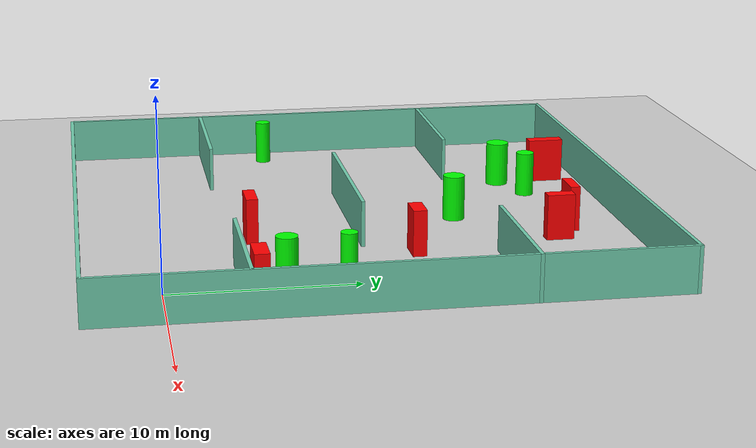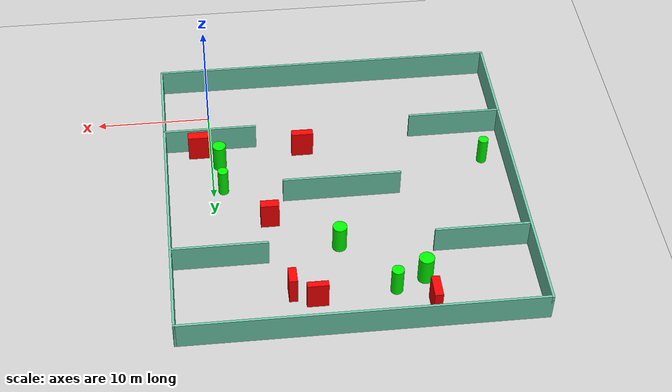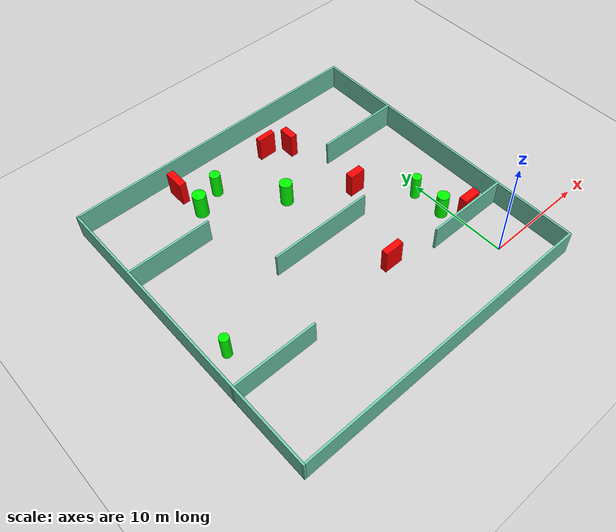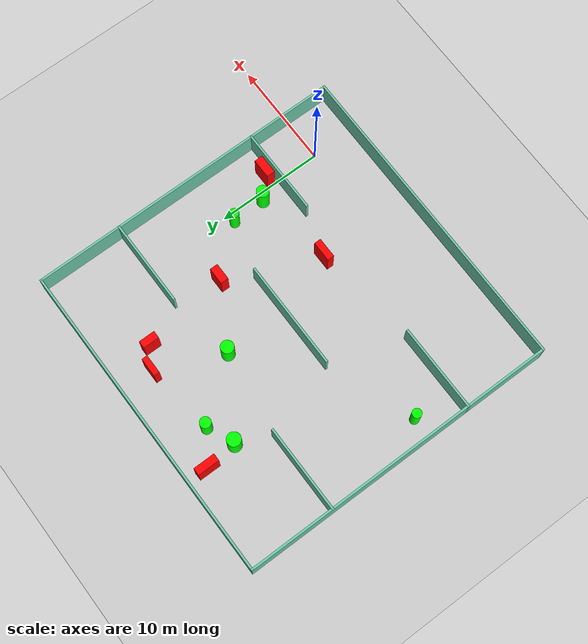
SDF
<sdf version="1.7">
 <world name="default">
  <light name="sun" type="directional">
   <pose>0 0 10 0 -0 0</pose>
   <diffuse>0.8 0.8 0.8 1</diffuse>
   <specular>0.2 0.2 0.2 1</specular>
   <attenuation>
    <range>1000</range>
    <constant>0.9</constant>
    <linear>0.01</linear>
    <quadratic>0.001</quadratic>
   </attenuation>
   <direction>-0.5 0.1 -0.9</direction>
   <spot><inner_angle>0</inner_angle><outer_angle>0</outer_angle><falloff>0</falloff></spot>
  </light>
  <model name="ground_plane">
   <static>1</static>
   <link name="link">
    <collision name="collision">
     <geometry><plane><normal>0 0 1</normal><size>100 100</size></plane></geometry>
     <surface>
      <contact><collide_bitmask>65535</collide_bitmask></contact>
      <friction><ode><mu>100</mu><mu2>50</mu2></ode></friction>
     </surface>
    </collision>
    <visual name="visual">
     <cast_shadows>0</cast_shadows>
     <geometry><plane><normal>0 0 1</normal><size>100 100</size></plane></geometry>
     <material>
      <script><uri>file://media/materials/scripts/gazebo.material</uri><name>Gazebo/Grey</name></script>
     </material>
    </visual>
   </link>
  </model>
  <gravity>0 0 -9.8</gravity>
  <magnetic_field>6e-06 2.3e-05 -4.2e-05</magnetic_field>
  <atmosphere type="adiabatic"/>
  <physics type="ode">
   <max_step_size>0.001</max_step_size>
   <real_time_factor>1</real_time_factor>
   <real_time_update_rate>1000</real_time_update_rate>
  </physics>
  <scene><ambient>0.4 0.4 0.4 1</ambient><background>0.7 0.7 0.7 1</background><shadows>1</shadows></scene>
  <spherical_coordinates>
   <surface_model>EARTH_WGS84</surface_model>
   <latitude_deg>0</latitude_deg>
   <longitude_deg>0</longitude_deg>
   <elevation>0</elevation>
   <heading_deg>0</heading_deg>
  </spherical_coordinates>
  <model name="my_base_walls">
   <link name="Wall_10">
    <collision name="Wall_10_Collision">
     <geometry><box><size>8.2 0.2 2.5</size></box></geometry>
     <pose>0 0 1.25 0 -0 0</pose>
    </collision>
    <visual name="Wall_10_Visual">
     <pose>0 0 1.25 0 -0 0</pose>
     <geometry><box><size>8.2 0.2 2.5</size></box></geometry>
     <material>
      <script><uri>file://media/materials/scripts/gazebo.material</uri><name>Gazebo/Grey</name></script>
      <ambient>0.435294 0.796078 0.67451 1</ambient>
     </material>
     <meta><layer>0</layer></meta>
    </visual>
    <pose>-11 -7 0 0 -0 0</pose>
   </link>
   <link name="Wall_12">
    <collision name="Wall_12_Collision">
     <geometry><box><size>8.2 0.2 2.5</size></box></geometry>
     <pose>0 0 1.25 0 -0 0</pose>
    </collision>
    <visual name="Wall_12_Visual">
     <pose>0 0 1.25 0 -0 0</pose>
     <geometry><box><size>8.2 0.2 2.5</size></box></geometry>
     <material>
      <script><uri>file://media/materials/scripts/gazebo.material</uri><name>Gazebo/Grey</name></script>
      <ambient>0.435294 0.796078 0.67451 1</ambient>
     </material>
     <meta><layer>0</layer></meta>
    </visual>
    <pose>-11 7 0 0 -0 0</pose>
   </link>
   <link name="Wall_14">
    <collision name="Wall_14_Collision">
     <geometry><box><size>8.2 0.2 2.5</size></box></geometry>
     <pose>0 0 1.25 0 -0 0</pose>
    </collision>
    <visual name="Wall_14_Visual">
     <pose>0 0 1.25 0 -0 0</pose>
     <geometry><box><size>8.2 0.2 2.5</size></box></geometry>
     <material>
      <script><uri>file://media/materials/scripts/gazebo.material</uri><name>Gazebo/Grey</name></script>
      <ambient>0.435294 0.796078 0.67451 1</ambient>
     </material>
     <meta><layer>0</layer></meta>
    </visual>
    <pose>11 7 0 0 -0 3.14159</pose>
   </link>
   <link name="Wall_16">
    <collision name="Wall_16_Collision">
     <geometry><box><size>10.2 0.2 2.5</size></box></geometry>
     <pose>0 0 1.25 0 -0 0</pose>
    </collision>
    <visual name="Wall_16_Visual">
     <pose>0 0 1.25 0 -0 0</pose>
     <geometry><box><size>10.2 0.2 2.5</size></box></geometry>
     <material>
      <script><uri>file://media/materials/scripts/gazebo.material</uri><name>Gazebo/Grey</name></script>
      <ambient>0.435294 0.796078 0.67451 1</ambient>
     </material>
     <meta><layer>0</layer></meta>
    </visual>
    <pose>0 0 0 0 -0 3.14159</pose>
   </link>
   <link name="Wall_2">
    <collision name="Wall_2_Collision">
     <geometry><box><size>30.2 0.2 2.5</size></box></geometry>
     <pose>0 0 1.25 0 -0 0</pose>
    </collision>
    <visual name="Wall_2_Visual">
     <pose>0 0 1.25 0 -0 0</pose>
     <geometry><box><size>30.2 0.2 2.5</size></box></geometry>
     <material>
      <script><uri>file://media/materials/scripts/gazebo.material</uri><name>Gazebo/Grey</name></script>
      <ambient>0.435294 0.796078 0.67451 1</ambient>
     </material>
     <meta><layer>0</layer></meta>
    </visual>
    <pose>0 -15 0 0 -0 3.14159</pose>
   </link>
   <link name="Wall_3">
    <collision name="Wall_3_Collision">
     <geometry><box><size>30.2 0.2 2.5</size></box></geometry>
     <pose>0 0 1.25 0 -0 0</pose>
    </collision>
    <visual name="Wall_3_Visual">
     <pose>0 0 1.25 0 -0 0</pose>
     <geometry><box><size>30.2 0.2 2.5</size></box></geometry>
     <material>
      <script><uri>file://media/materials/scripts/gazebo.material</uri><name>Gazebo/Grey</name></script>
      <ambient>0.435294 0.796078 0.67451 1</ambient>
     </material>
     <meta><layer>0</layer></meta>
    </visual>
    <pose>-15 0 0 0 -0 1.5708</pose>
   </link>
   <link name="Wall_4">
    <collision name="Wall_4_Collision">
     <geometry><box><size>30.2 0.2 2.5</size></box></geometry>
     <pose>0 0 1.25 0 -0 0</pose>
    </collision>
    <visual name="Wall_4_Visual">
     <pose>0 0 1.25 0 -0 0</pose>
     <geometry><box><size>30.2 0.2 2.5</size></box></geometry>
     <material>
      <script><uri>file://media/materials/scripts/gazebo.material</uri><name>Gazebo/Grey</name></script>
      <ambient>0.435294 0.796078 0.67451 1</ambient>
     </material>
     <meta><layer>0</layer></meta>
    </visual>
    <pose>0 15 0 0 -0 0</pose>
   </link>
   <link name="Wall_6">
    <collision name="Wall_6_Collision">
     <geometry><box><size>30.2 0.2 2.5</size></box></geometry>
     <pose>0 0 1.25 0 -0 0</pose>
    </collision>
    <visual name="Wall_6_Visual">
     <pose>0 0 1.25 0 -0 0</pose>
     <geometry><box><size>30.2 0.2 2.5</size></box></geometry>
     <material>
      <script><uri>file://media/materials/scripts/gazebo.material</uri><name>Gazebo/Grey</name></script>
      <ambient>0.435294 0.796078 0.67451 1</ambient>
     </material>
     <meta><layer>0</layer></meta>
    </visual>
    <pose>15 0 0 0 -0 1.5708</pose>
   </link>
   <link name="Wall_8">
    <collision name="Wall_8_Collision">
     <geometry><box><size>8.2 0.2 2.5</size></box></geometry>
     <pose>0 0 1.25 0 -0 0</pose>
    </collision>
    <visual name="Wall_8_Visual">
     <pose>0 0 1.25 0 -0 0</pose>
     <geometry><box><size>8.2 0.2 2.5</size></box></geometry>
     <material>
      <script><uri>file://media/materials/scripts/gazebo.material</uri><name>Gazebo/Grey</name></script>
      <ambient>0.435294 0.796078 0.67451 1</ambient>
     </material>
     <meta><layer>0</layer></meta>
    </visual>
    <pose>11 -7 0 0 -0 3.14159</pose>
   </link>
   <static>1</static>
   <pose>-11 11 0 0 -0 0</pose>
  </model>
  <model name="cylinder1">
   <static>1</static>
   <link name="link">
    <inertial>
     <mass>1</mass>
     <inertia><ixx>0.5</ixx><ixy>0</ixy><ixz>0</ixz><iyy>0.5</iyy><iyz>0</iyz><izz>1</izz></inertia>
    </inertial>
    <collision name="collision">
     <geometry><cylinder><radius>0.6020880685614407</radius><length>2.5</length></cylinder></geometry>
    </collision>
    <visual name="visual">
     <geometry><cylinder><radius>0.6020880685614407</radius><length>2.5</length></cylinder></geometry>
     <material>
      <ambient>0 1 0 1</ambient>
      <diffuse>0 1 0 1</diffuse>
      <specular>0.1 0.1 0.1 1</specular>
      <emissive>0 0 0 0</emissive>
     </material>
    </visual>
   </link>
   <pose>-10.109175073813095 16.86545738782358 1.25 0 0 0</pose>
  </model>
  <model name="cylinder2">
   <static>1</static>
   <link name="link">
    <inertial>
     <mass>1</mass>
     <inertia><ixx>0.5</ixx><ixy>0</ixy><ixz>0</ixz><iyy>0.5</iyy><iyz>0</iyz><izz>1</izz></inertia>
    </inertial>
    <collision name="collision">
     <geometry><cylinder><radius>0.44501758702398386</radius><length>2.5</length></cylinder></geometry>
    </collision>
    <visual name="visual">
     <geometry><cylinder><radius>0.44501758702398386</radius><length>2.5</length></cylinder></geometry>
     <material>
      <ambient>0 1 0 1</ambient>
      <diffuse>0 1 0 1</diffuse>
      <specular>0.1 0.1 0.1 1</specular>
      <emissive>0 0 0 0</emissive>
     </material>
    </visual>
   </link>
   <pose>-0.8512672367135323 9.419819001963878 1.25 0 0 0</pose>
  </model>
  <model name="cylinder3">
   <static>1</static>
   <link name="link">
    <inertial>
     <mass>1</mass>
     <inertia><ixx>0.5</ixx><ixy>0</ixy><ixz>0</ixz><iyy>0.5</iyy><iyz>0</iyz><izz>1</izz></inertia>
    </inertial>
    <collision name="collision">
     <geometry><cylinder><radius>0.6409133035188992</radius><length>2.5</length></cylinder></geometry>
    </collision>
    <visual name="visual">
     <geometry><cylinder><radius>0.6409133035188992</radius><length>2.5</length></cylinder></geometry>
     <material>
      <ambient>0 1 0 1</ambient>
      <diffuse>0 1 0 1</diffuse>
      <specular>0.1 0.1 0.1 1</specular>
      <emissive>0 0 0 0</emissive>
     </material>
    </visual>
   </link>
   <pose>-16.713996009732124 21.007818175372982 1.25 0 0 0</pose>
  </model>
  <model name="cylinder4">
   <static>1</static>
   <link name="link">
    <inertial>
     <mass>1</mass>
     <inertia><ixx>0.5</ixx><ixy>0</ixy><ixz>0</ixz><iyy>0.5</iyy><iyz>0</iyz><izz>1</izz></inertia>
    </inertial>
    <collision name="collision">
     <geometry><cylinder><radius>0.5095644030786839</radius><length>2.5</length></cylinder></geometry>
    </collision>
    <visual name="visual">
     <geometry><cylinder><radius>0.5095644030786839</radius><length>2.5</length></cylinder></geometry>
     <material>
      <ambient>0 1 0 1</ambient>
      <diffuse>0 1 0 1</diffuse>
      <specular>0.1 0.1 0.1 1</specular>
      <emissive>0 0 0 0</emissive>
     </material>
    </visual>
   </link>
   <pose>-14.203405401016978 22.046082443154912 1.25 0 0 0</pose>
  </model>
  <model name="cylinder5">
   <static>1</static>
   <link name="link">
    <inertial>
     <mass>1</mass>
     <inertia><ixx>0.5</ixx><ixy>0</ixy><ixz>0</ixz><iyy>0.5</iyy><iyz>0</iyz><izz>1</izz></inertia>
    </inertial>
    <collision name="collision">
     <geometry><cylinder><radius>0.5776933856723151</radius><length>2.5</length></cylinder></geometry>
    </collision>
    <visual name="visual">
     <geometry><cylinder><radius>0.5776933856723151</radius><length>2.5</length></cylinder></geometry>
     <material>
      <ambient>0 1 0 1</ambient>
      <diffuse>0 1 0 1</diffuse>
      <specular>0.1 0.1 0.1 1</specular>
      <emissive>0 0 0 0</emissive>
     </material>
    </visual>
   </link>
   <pose>-0.7190693449009125 6.255455666739447 1.25 0 0 0</pose>
  </model>
  <model name="cylinder6">
   <static>1</static>
   <link name="link">
    <inertial>
     <mass>1</mass>
     <inertia><ixx>0.5</ixx><ixy>0</ixy><ixz>0</ixz><iyy>0.5</iyy><iyz>0</iyz><izz>1</izz></inertia>
    </inertial>
    <collision name="collision">
     <geometry><cylinder><radius>0.434236750159415</radius><length>2.5</length></cylinder></geometry>
    </collision>
    <visual name="visual">
     <geometry><cylinder><radius>0.434236750159415</radius><length>2.5</length></cylinder></geometry>
     <material>
      <ambient>0 1 0 1</ambient>
      <diffuse>0 1 0 1</diffuse>
      <specular>0.1 0.1 0.1 1</specular>
      <emissive>0 0 0 0</emissive>
     </material>
    </visual>
   </link>
   <pose>-23.954883458717656 7.752871314423436 1.25 0 0 0</pose>
  </model>
  <model name="box1">
   <static>1</static>
   <link name="link">
    <inertial>
     <mass>1</mass>
     <inertia><ixx>0.083</ixx><ixy>0</ixy><ixz>0</ixz><iyy>0.083</iyy><iyz>0</iyz><izz>0.083</izz></inertia>
    </inertial>
    <collision name="collision">
     <geometry><box><size>0.6937670935307982 1.5181273712845997 2.5</size></box></geometry>
    </collision>
    <visual name="visual">
     <geometry><box><size>0.6937670935307982 1.5181273712845997 2.5</size></box></geometry>
     <material>
      <ambient>1 0 0 1</ambient>
      <diffuse>1 0 0 1</diffuse>
      <specular>0.1 0.1 0.1 1</specular>
      <emissive>0 0 0 0</emissive>
     </material>
    </visual>
    <sensor name="my_contact" type="contact">
     <contact><collision>box_collision</collision><topic>__default_topic__</topic></contact>
    </sensor>
   </link>
   <pose>-5.704880951834642 21.70355410913386 1.25 0 0 0</pose>
  </model>
  <model name="box2">
   <static>1</static>
   <link name="link">
    <inertial>
     <mass>1</mass>
     <inertia><ixx>0.083</ixx><ixy>0</ixy><ixz>0</ixz><iyy>0.083</iyy><iyz>0</iyz><izz>0.083</izz></inertia>
    </inertial>
    <collision name="collision">
     <geometry><box><size>1.8210079773562573 0.7924231595563873 2.5</size></box></geometry>
    </collision>
    <visual name="visual">
     <geometry><box><size>1.8210079773562573 0.7924231595563873 2.5</size></box></geometry>
     <material>
      <ambient>1 0 0 1</ambient>
      <diffuse>1 0 0 1</diffuse>
      <specular>0.1 0.1 0.1 1</specular>
      <emissive>0 0 0 0</emissive>
     </material>
    </visual>
    <sensor name="my_contact" type="contact">
     <contact><collision>box_collision</collision><topic>__default_topic__</topic></contact>
    </sensor>
   </link>
   <pose>1.0430882853471886 4.727792337752112 1.25 0 0 0</pose>
  </model>
  <model name="box3">
   <static>1</static>
   <link name="link">
    <inertial>
     <mass>1</mass>
     <inertia><ixx>0.083</ixx><ixy>0</ixy><ixz>0</ixz><iyy>0.083</iyy><iyz>0</iyz><izz>0.083</izz></inertia>
    </inertial>
    <collision name="collision">
     <geometry><box><size>1.7731641095377835 0.5440133893027864 2.5</size></box></geometry>
    </collision>
    <visual name="visual">
     <geometry><box><size>1.7731641095377835 0.5440133893027864 2.5</size></box></geometry>
     <material>
      <ambient>1 0 0 1</ambient>
      <diffuse>1 0 0 1</diffuse>
      <specular>0.1 0.1 0.1 1</specular>
      <emissive>0 0 0 0</emissive>
     </material>
    </visual>
    <sensor name="my_contact" type="contact">
     <contact><collision>box_collision</collision><topic>__default_topic__</topic></contact>
    </sensor>
   </link>
   <pose>-7.617582277395545 22.875420807099832 1.25 0 0 0</pose>
  </model>
  <model name="box4">
   <static>1</static>
   <link name="link">
    <inertial>
     <mass>1</mass>
     <inertia><ixx>0.083</ixx><ixy>0</ixy><ixz>0</ixz><iyy>0.083</iyy><iyz>0</iyz><izz>0.083</izz></inertia>
    </inertial>
    <collision name="collision">
     <geometry><box><size>1.896981034028955 0.6386500021953501 2.5</size></box></geometry>
    </collision>
    <visual name="visual">
     <geometry><box><size>1.896981034028955 0.6386500021953501 2.5</size></box></geometry>
     <material>
      <ambient>1 0 0 1</ambient>
      <diffuse>1 0 0 1</diffuse>
      <specular>0.1 0.1 0.1 1</specular>
      <emissive>0 0 0 0</emissive>
     </material>
    </visual>
    <sensor name="my_contact" type="contact">
     <contact><collision>box_collision</collision><topic>__default_topic__</topic></contact>
    </sensor>
   </link>
   <pose>-8.135813958304364 5.240259291962779 1.25 0 0 0</pose>
  </model>
  <model name="box5">
   <static>1</static>
   <link name="link">
    <inertial>
     <mass>1</mass>
     <inertia><ixx>0.083</ixx><ixy>0</ixy><ixz>0</ixz><iyy>0.083</iyy><iyz>0</iyz><izz>0.083</izz></inertia>
    </inertial>
    <collision name="collision">
     <geometry><box><size>0.6997272335178012 2.0292135450972686 2.5</size></box></geometry>
    </collision>
    <visual name="visual">
     <geometry><box><size>0.6997272335178012 2.0292135450972686 2.5</size></box></geometry>
     <material>
      <ambient>1 0 0 1</ambient>
      <diffuse>1 0 0 1</diffuse>
      <specular>0.1 0.1 0.1 1</specular>
      <emissive>0 0 0 0</emissive>
     </material>
    </visual>
    <sensor name="my_contact" type="contact">
     <contact><collision>box_collision</collision><topic>__default_topic__</topic></contact>
    </sensor>
   </link>
   <pose>-17.055528108431808 23.999314271504073 1.25 0 0 0</pose>
  </model>
  <model name="box6">
   <static>1</static>
   <link name="link">
    <inertial>
     <mass>1</mass>
     <inertia><ixx>0.083</ixx><ixy>0</ixy><ixz>0</ixz><iyy>0.083</iyy><iyz>0</iyz><izz>0.083</izz></inertia>
    </inertial>
    <collision name="collision">
     <geometry><box><size>1.573929099430493 0.7476846161548112 2.5</size></box></geometry>
    </collision>
    <visual name="visual">
     <geometry><box><size>1.573929099430493 0.7476846161548112 2.5</size></box></geometry>
     <material>
      <ambient>1 0 0 1</ambient>
      <diffuse>1 0 0 1</diffuse>
      <specular>0.1 0.1 0.1 1</specular>
      <emissive>0 0 0 0</emissive>
     </material>
    </visual>
    <sensor name="my_contact" type="contact">
     <contact><collision>box_collision</collision><topic>__default_topic__</topic></contact>
    </sensor>
   </link>
   <pose>-4.538081447206093 13.650294428980619 1.25 0 0 0</pose>
  </model>
 </world>
</sdf>
